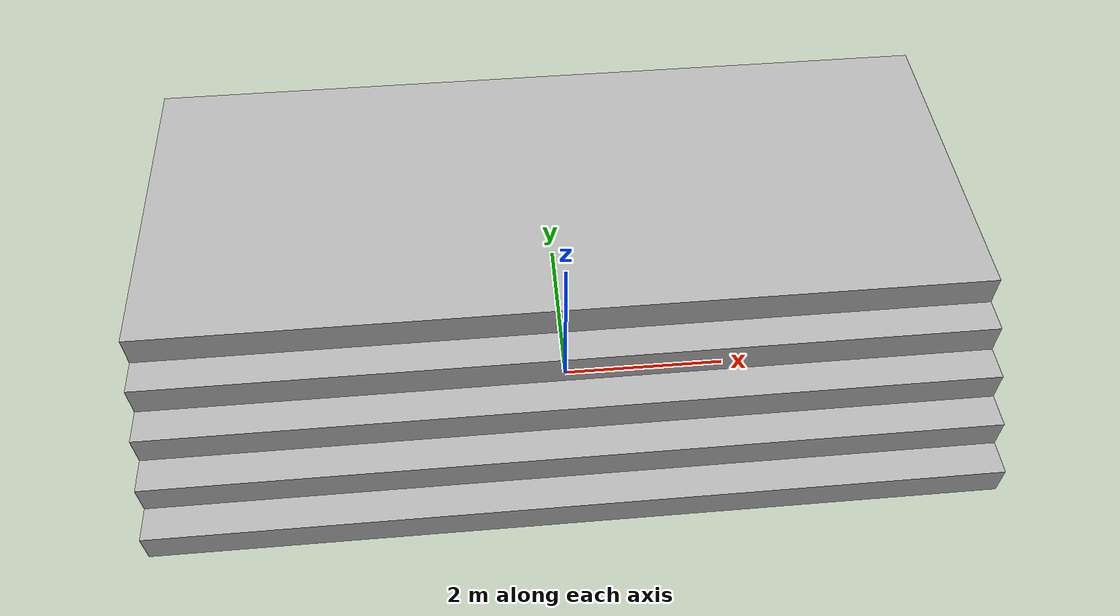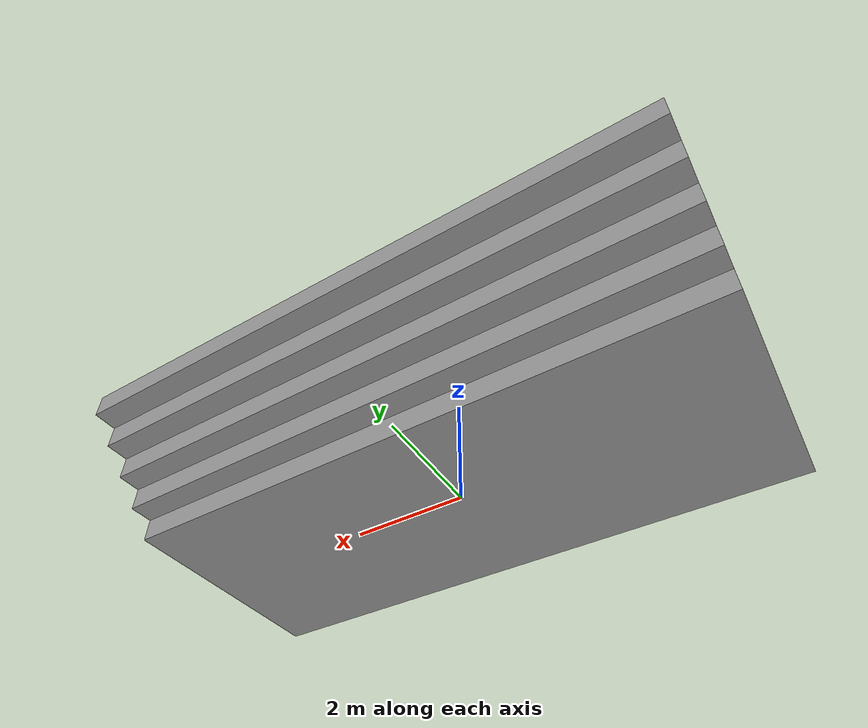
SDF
<?xml version="1.0" ?>
<sdf version="1.6">
  <model name="45degstair">
    <static>true</static>
    <pose>0 0 0 0 0 0</pose>
    <link name="link">
      <collision name="collision">
        <geometry>
          <mesh>
            <scale>1 1 1</scale>
            <uri>model://45degstair/45degstair.stl</uri>
          </mesh>
        </geometry>
        <surface>
          <friction>
            <ode>
              <mu>100</mu>
              <mu2>50</mu2>
            </ode>
          </friction>
        </surface>
      </collision>
      <visual name="visual">
        <geometry>
          <mesh>
            <scale>1 1 1</scale>
            <uri>model://45degstair/45degstair.stl</uri>
          </mesh>
        </geometry>
      </visual>
    </link>
  </model>
</sdf>
